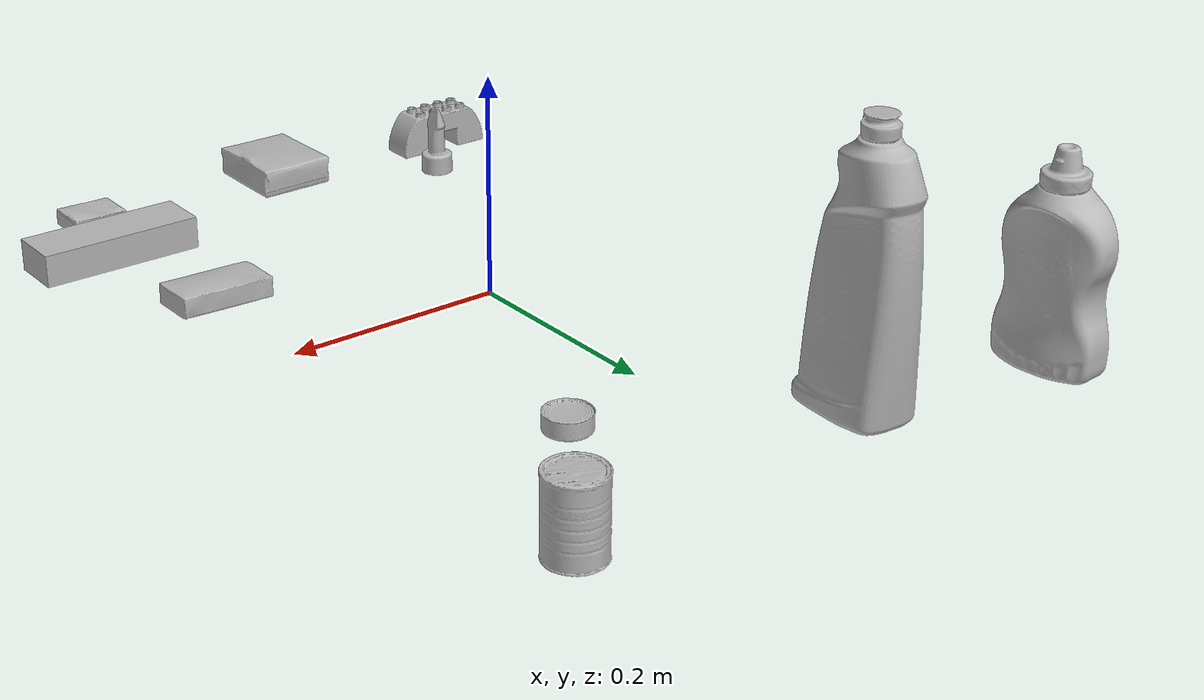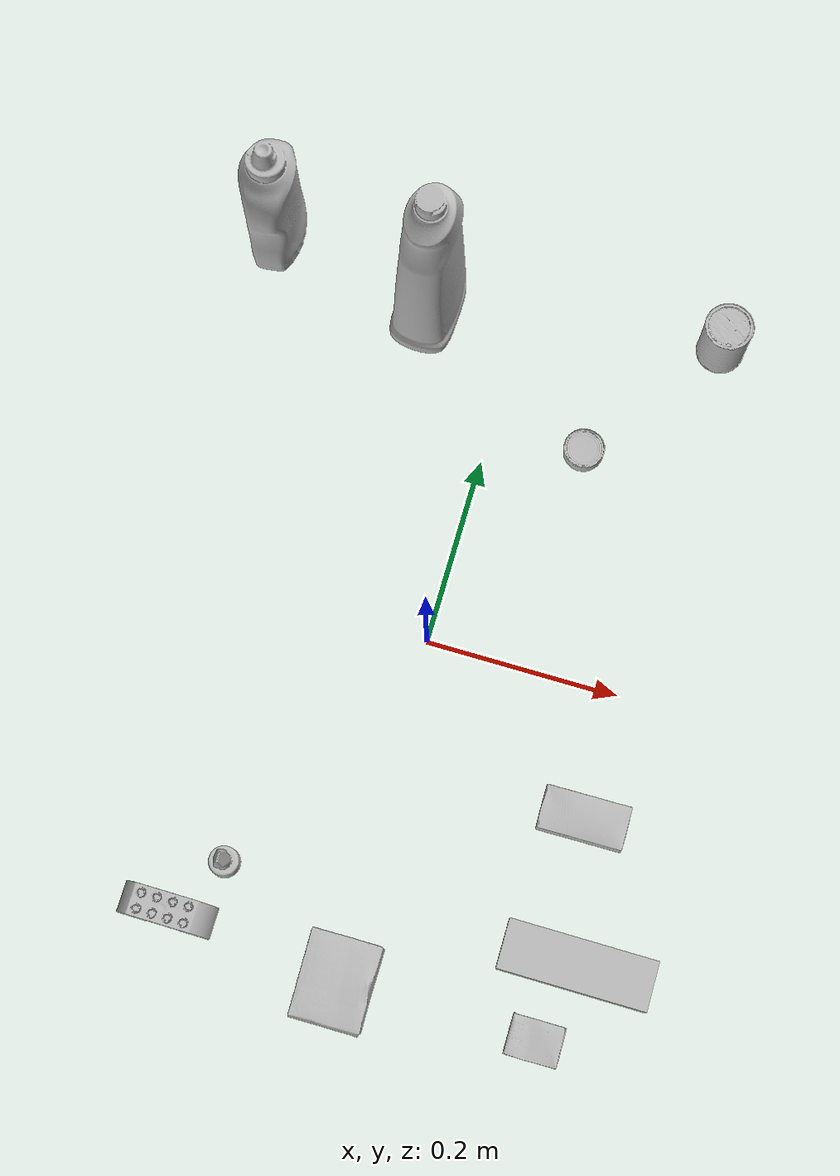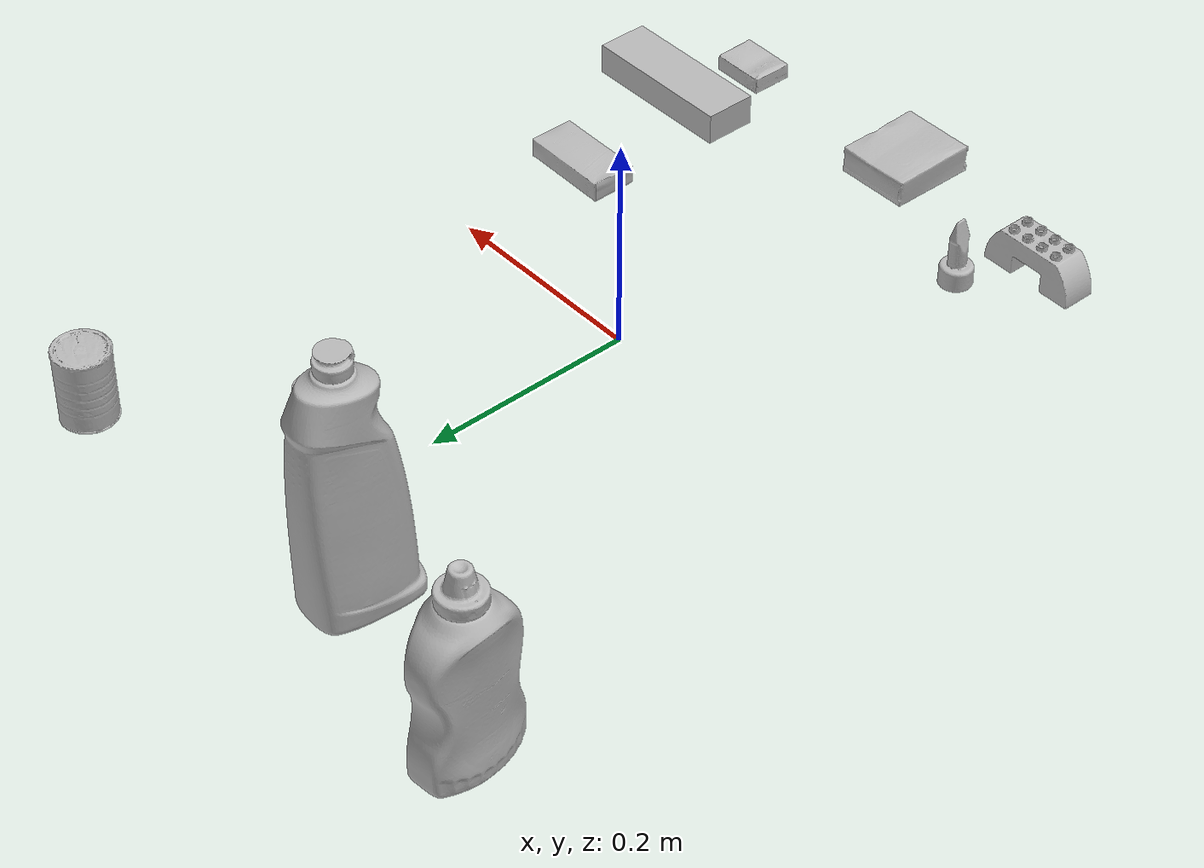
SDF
<?xml version="1.0" ?>
<sdf version="1.4">
  <world name="default">
    <light name="light1" type="point">
      <pose>0 0 1 0 0 0</pose>
      <diffuse>3 3 3 1</diffuse>
      <specular>3 3 3 1</specular>
    </light>
    <light name="light2" type="point">
      <pose>0 0.5 2 0 0 0</pose>
      <diffuse>1 1 1 1</diffuse>
      <specular>1 1 1 1</specular>
    </light>
    <light name="light3" type="point">
      <pose>0 0.5 2 0 0 0</pose>
      <diffuse>3 3 3 1</diffuse>
      <specular>3 3 3 1</specular>
    </light>
    <scene>
      <ambient>0.7 0.7 0.7</ambient>
    </scene>
    <model name="bottle1">
      <link name="link_bottle1">
        <collision name="default">
          <geometry>
            <mesh>
              <uri>model://mustard_bottle/collision_meshes/collision.obj</uri>
              <scale>1.0 1.0 1.0</scale>
            </mesh>
          </geometry>
          <surface>
            <friction>
              <ode>
                <mu>0.5</mu>
                <mu2>0.5</mu2>
              </ode>
            </friction>
          </surface>
        </collision>
        <visual name="default">
          <geometry>
            <mesh>
              <uri>model://mustard_bottle/visual_meshes/visual.dae</uri>
              <scale>1.0 1.0 1.0</scale>
            </mesh>
          </geometry>
        </visual>
        <inertial>
          <mass>0.8303800225257874</mass>
          <pose>0.0005032453336752951 -0.00015647402324248105 -0.017475798726081848 0.0004182333015560062 0.0009465791044325989 0.02485372608929167</pose>
          <inertia>
            <ixx>0.0023058522</ixx>
            <iyy>0.0020231898</iyy>
            <izz>0.00060770847</izz>
            <ixy>0</ixy>
            <ixz>0</ixz>
            <iyz>0</iyz>
          </inertia>
        </inertial>
      </link>
      <pose>-0.2807631194591522 0.38973468542099 0.09615197777748108 1.3426194425992938e-05 1.3935383081689747e-05 0.09070330290575579</pose>
    </model>
    <model name="bottle2">
      <link name="link_bottle2">
        <collision name="default">
          <geometry>
            <mesh>
              <uri>model://bleach_cleanser/collision_meshes/collision.obj</uri>
              <scale>1.0 1.0 1.0</scale>
            </mesh>
          </geometry>
          <surface>
            <friction>
              <ode>
                <mu>0.5</mu>
                <mu2>0.5</mu2>
              </ode>
            </friction>
          </surface>
        </collision>
        <visual name="default">
          <geometry>
            <mesh>
              <uri>model://bleach_cleanser/visual_meshes/visual.dae</uri>
              <scale>1.0 1.0 1.0</scale>
            </mesh>
          </geometry>
        </visual>
        <inertial>
          <mass>1.2443958520889282</mass>
          <pose>0.00012193184375064448 0.0037838828284293413 -0.02442161552608013 -0.07381670616387152 0.00042011519151103325 -0.006875073427896589</pose>
          <inertia>
            <ixx>0.006056655</ixx>
            <iyy>0.005643917</iyy>
            <izz>0.0010355307</izz>
            <ixy>0</ixy>
            <ixz>0</ixz>
            <iyz>0</iyz>
          </inertia>
        </inertial>
      </link>
      <pose>-0.09985530376434326 0.349889874458313 0.12578420341014862 -0.00020534992030130878 1.225617694180221e-05 -0.05743426763707446</pose>
    </model>
    <model name="toy1">
      <link name="link_toy1">
        <collision name="default">
          <geometry>
            <mesh>
              <uri>model://e_lego_duplo/collision_meshes/collision.obj</uri>
              <scale>1.0 1.0 1.0</scale>
            </mesh>
          </geometry>
          <surface>
            <friction>
              <ode>
                <mu>0.5</mu>
                <mu2>0.5</mu2>
              </ode>
            </friction>
          </surface>
        </collision>
        <visual name="default">
          <geometry>
            <mesh>
              <uri>model://e_lego_duplo/visual_meshes/visual.dae</uri>
              <scale>1.0 1.0 1.0</scale>
            </mesh>
          </geometry>
        </visual>
        <inertial>
          <mass>0.09737597405910492</mass>
          <pose>0.00032560466206632555 0.00023485408746637404 0.00195214559789747 -0.022567666099209266 -6.826041083389806e-05 -0.0076251575404409295</pose>
          <inertia>
            <ixx>2.0306108e-05</ixx>
            <iyy>8.3341496e-05</iyy>
            <izz>8.115786e-05</izz>
            <ixy>0</ixy>
            <ixz>0</ixz>
            <iyz>0</iyz>
          </inertia>
        </inertial>
      </link>
      <pose>-0.16981001198291779 -0.330024778842926 0.02180900052189827 4.5268454817584265e-07 -1.6826119722167413e-07 -0.0014902907886710395</pose>
    </model>
    <model name="toy2">
      <link name="link_toy2">
        <collision name="default">
          <geometry>
            <mesh>
              <uri>model://e_toy_airplane/collision_meshes/collision.obj</uri>
              <scale>1.0 1.0 1.0</scale>
            </mesh>
          </geometry>
          <surface>
            <friction>
              <ode>
                <mu>0.5</mu>
                <mu2>0.5</mu2>
              </ode>
            </friction>
          </surface>
        </collision>
        <visual name="default">
          <geometry>
            <mesh>
              <uri>model://e_toy_airplane/visual_meshes/visual.dae</uri>
              <scale>1.0 1.0 1.0</scale>
            </mesh>
          </geometry>
        </visual>
        <inertial>
          <mass>0.02463557943701744</mass>
          <pose>0.0001174048229586333 -2.2482929125544615e-05 -0.011187203228473663 0.005518471763615081 0.009228316378097946 0.15041226495803456</pose>
          <inertia>
            <ixx>7.519061e-06</ixx>
            <iyy>7.442144e-06</iyy>
            <izz>2.2597733e-06</izz>
            <ixy>0</ixy>
            <ixz>0</ixz>
            <iyz>0</iyz>
          </inertia>
        </inertial>
      </link>
      <pose>-0.12995360791683197 -0.2699415385723114 0.03321222960948944 6.51050796298179e-05 -0.00016467085316699027 -0.04130924121725986</pose>
    </model>
    <model name="can1">
      <link name="link_can1">
        <collision name="default">
          <geometry>
            <mesh>
              <uri>model://master_chef_can/collision_meshes/collision.obj</uri>
              <scale>0.5 0.5 0.5</scale>
            </mesh>
          </geometry>
          <surface>
            <friction>
              <ode>
                <mu>0.5</mu>
                <mu2>0.5</mu2>
              </ode>
            </friction>
          </surface>
        </collision>
        <visual name="default">
          <geometry>
            <mesh>
              <uri>model://master_chef_can/visual_meshes/visual.dae</uri>
              <scale>0.5 0.5 0.5</scale>
            </mesh>
          </geometry>
        </visual>
        <inertial>
          <mass>0.10604178160429001</mass>
          <pose>-4.6619643399026245e-05 1.3926852204804163e-07 -5.079910988570191e-05 -0.0017995162277820833 0.0006479167566960504 -0.6102671332965355</pose>
          <inertia>
            <ixx>6.2239335e-05</ixx>
            <iyy>6.178125e-05</iyy>
            <izz>3.439199e-05</izz>
            <ixy>0</ixy>
            <ixz>0</ixz>
            <iyz>0</iyz>
          </inertia>
        </inertial>
      </link>
      <pose>0.21011865139007568 0.3900892734527588 0.03530199080705643 -1.3669908344117876e-06 -7.312885453217137e-07 0.04149917406670835</pose>
    </model>
    <model name="can2">
      <link name="link_can2">
        <collision name="default">
          <geometry>
            <mesh>
              <uri>model://tuna_fish_can/collision_meshes/collision.obj</uri>
              <scale>0.5 0.5 0.5</scale>
            </mesh>
          </geometry>
          <surface>
            <friction>
              <ode>
                <mu>0.5</mu>
                <mu2>0.5</mu2>
              </ode>
            </friction>
          </surface>
        </collision>
        <visual name="default">
          <geometry>
            <mesh>
              <uri>model://tuna_fish_can/visual_meshes/visual.dae</uri>
              <scale>0.5 0.5 0.5</scale>
            </mesh>
          </geometry>
        </visual>
        <inertial>
          <mass>0.028372401371598244</mass>
          <pose>-2.0361669157864526e-05 -7.256527169374749e-06 -0.0005269024986773729 -0.0017944775646394609 0.00017161727950706725 0.2405381123423382</pose>
          <inertia>
            <ixx>3.8359926e-06</ixx>
            <iyy>3.8200033e-06</iyy>
            <izz>6.5639315e-06</izz>
            <ixy>0</ixy>
            <ixz>0</ixz>
            <iyz>0</iyz>
          </inertia>
        </inertial>
      </link>
      <pose>0.09997710585594177 0.2400248795747757 0.00851999968290329 -2.247228753705326e-08 -3.351550062659559e-09 -0.088215474622004</pose>
    </model>
    <model name="box1">
      <link name="link_box1">
        <collision name="default">
          <geometry>
            <mesh>
              <uri>model://jenga/collision_meshes/collision.obj</uri>
              <scale>1.0 1.0 1.0</scale>
            </mesh>
          </geometry>
          <surface>
            <friction>
              <ode>
                <mu>0.5</mu>
                <mu2>0.5</mu2>
              </ode>
            </friction>
          </surface>
        </collision>
        <visual name="default">
          <geometry>
            <mesh>
              <uri>model://jenga/visual_meshes/visual.dae</uri>
              <scale>1.0 1.0 1.0</scale>
            </mesh>
          </geometry>
        </visual>
        <inertial>
          <mass>0.19909408688545227</mass>
          <pose>-2.502855807051674e-07 -0.0001025000965455547 -4.0923401684267446e-05 0.0 -7.34215461761844e-07 0.0</pose>
          <inertia>
            <ixx>5.509416e-05</ixx>
            <iyy>0.00037331658</iyy>
            <izz>0.00039854718</izz>
            <ixy>0</ixy>
            <ixz>0</ixz>
            <iyz>0</iyz>
          </inertia>
        </inertial>
      </link>
      <pose>0.23000046610832214 -0.2698974907398224 0.014999995939433575 1.4567301942046313e-08 9.233659042241032e-10 -1.9334385114471532e-07</pose>
    </model>
    <model name="box2">
      <link name="link_box2">
        <collision name="default">
          <geometry>
            <mesh>
              <uri>model://cracker_box/collision_meshes/collision.obj</uri>
              <scale>0.25 0.25 0.25</scale>
            </mesh>
          </geometry>
          <surface>
            <friction>
              <ode>
                <mu>0.5</mu>
                <mu2>0.5</mu2>
              </ode>
            </friction>
          </surface>
        </collision>
        <visual name="default">
          <geometry>
            <mesh>
              <uri>model://cracker_box/visual_meshes/visual.dae</uri>
              <scale>0.25 0.25 0.25</scale>
            </mesh>
          </geometry>
        </visual>
        <inertial>
          <mass>0.04114612191915512</mass>
          <pose>0.00023660354781895876 6.358561950037256e-05 -0.0004257383698131889 -0.00031620780631524763 -0.011106488668660274 0.002546795934166242</pose>
          <inertia>
            <ixx>6.5410845e-06</ixx>
            <iyy>1.0800616e-05</iyy>
            <izz>1.5413472e-05</izz>
            <ixy>0</ixy>
            <ixz>0</ixz>
            <iyz>0</iyz>
          </inertia>
        </inertial>
      </link>
      <pose>0.20993341505527496 -0.3498499393463135 0.009120451286435127 -0.011788913005809946 -0.007366494816729379 0.00012827914426065862</pose>
    </model>
    <model name="box3">
      <link name="link_box3">
        <collision name="default">
          <geometry>
            <mesh>
              <uri>model://gelatin_box/collision_meshes/collision.obj</uri>
              <scale>1.0 1.0 1.0</scale>
            </mesh>
          </geometry>
          <surface>
            <friction>
              <ode>
                <mu>0.5</mu>
                <mu2>0.5</mu2>
              </ode>
            </friction>
          </surface>
        </collision>
        <visual name="default">
          <geometry>
            <mesh>
              <uri>model://gelatin_box/visual_meshes/visual.dae</uri>
              <scale>1.0 1.0 1.0</scale>
            </mesh>
          </geometry>
        </visual>
        <inertial>
          <mass>0.2244011014699936</mass>
          <pose>0.00043196187471039593 0.00011156871914863586 -0.00036403213744051754 -0.001050372105108351 -0.004755819619724262 0.01644056133527167</pose>
          <inertia>
            <ixx>0.00015840889</ixx>
            <iyy>0.000113150636</iyy>
            <izz>0.0002411336</izz>
            <ixy>0</ixy>
            <ixz>0</ixz>
            <iyz>0</iyz>
          </inertia>
        </inertial>
      </link>
      <pose>0.009951278567314148 -0.35007166862487793 0.01516831386834383 0.00559749105952685 -0.007304584809638002 7.402876707305907e-06</pose>
    </model>
    <model name="box4">
      <link name="link_box4">
        <collision name="default">
          <geometry>
            <mesh>
              <uri>model://sugar_box/collision_meshes/collision.obj</uri>
              <scale>0.5 0.5 0.5</scale>
            </mesh>
          </geometry>
          <surface>
            <friction>
              <ode>
                <mu>0.5</mu>
                <mu2>0.5</mu2>
              </ode>
            </friction>
          </surface>
        </collision>
        <visual name="default">
          <geometry>
            <mesh>
              <uri>model://sugar_box/visual_meshes/visual.dae</uri>
              <scale>0.5 0.5 0.5</scale>
            </mesh>
          </geometry>
        </visual>
        <inertial>
          <mass>0.11117161065340042</mass>
          <pose>0.0005171863595023751 1.9245546354795806e-05 -0.00018182402709499002 -0.0004046265622990317 0.001050663638873437 0.002615378555930204</pose>
          <inertia>
            <ixx>2.3156968e-05</ixx>
            <iyy>7.4848074e-05</iyy>
            <izz>8.960209e-05</izz>
            <ixy>0</ixy>
            <ixz>0</ixz>
            <iyz>0</iyz>
          </inertia>
        </inertial>
      </link>
      <pose>0.19952277839183807 -0.13013340532779694 0.011399305425584316 0.0007749094818770633 -0.023433195329368856 0.00023493471532125894</pose>
    </model>
  </world>
</sdf>
